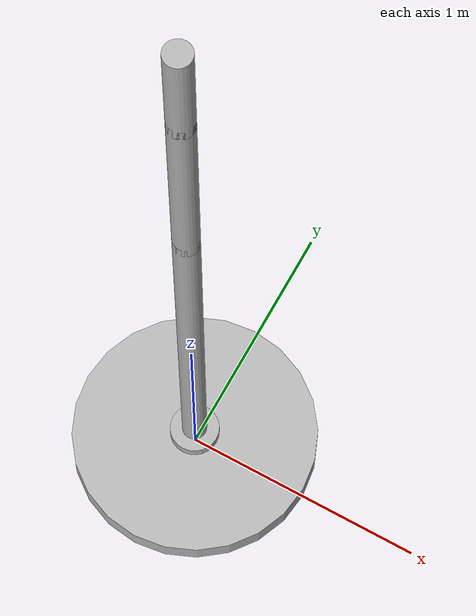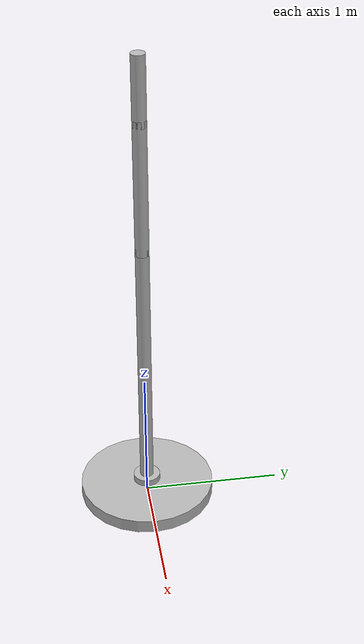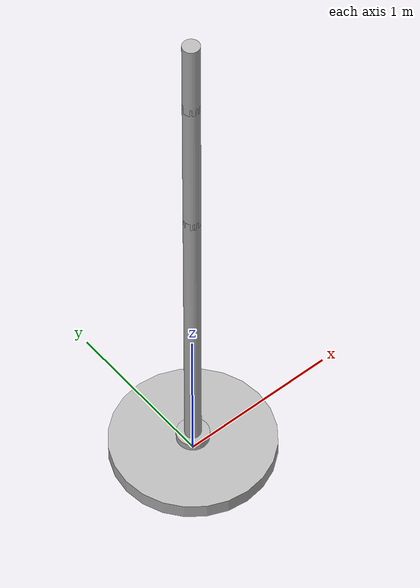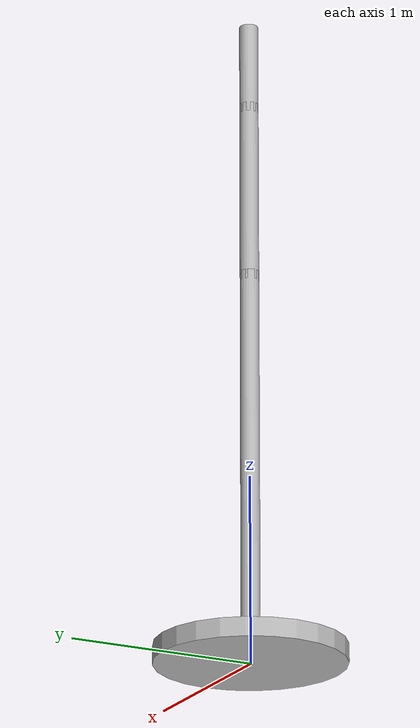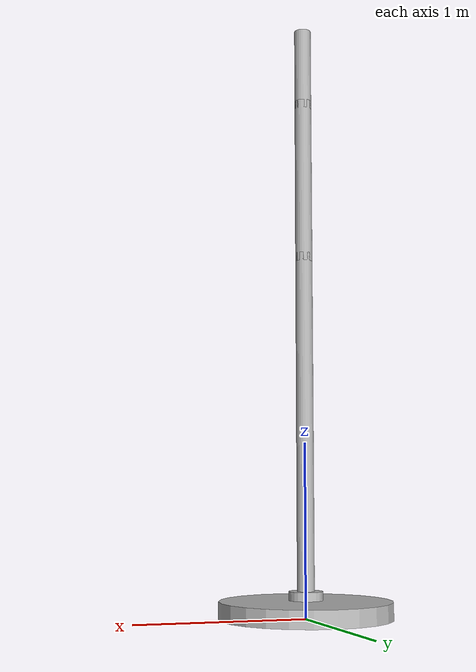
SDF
<?xml version='1.0'?>
<sdf version='1.4'>
  <model name="arm_model">
    <static>false</static>
    <link name="arm_base">

      <pose>0 0 0.05 0 0 0</pose>
      <inertial>
        <mass>50</mass>
      </inertial>
      <collision name="base_collision">
        <geometry>
          <cylinder>
            <radius>.5</radius>
            <length>.1</length>
          </cylinder>
        </geometry>
      </collision>

      <visual name="base_visual">
        <geometry>
          <cylinder>
            <radius>.5</radius>
            <length>.1</length>
          </cylinder>
        </geometry>
      </visual>

    </link>

    <link name="arm_one">
      <pose relative_to="arm_base">0 0 0.08 0 0 0</pose>
      <collision name="arm_one_collision">
        <geometry>
          <cylinder>
            <radius>.1</radius>
            <length>.05</length>
          </cylinder>
        </geometry>
      </collision>

      <visual name="arm_one_visual">

        <geometry>
          <cylinder>
            <radius>.1</radius>
            <length>.05</length>
          </cylinder>
        </geometry>
      </visual>

    </link>

    <link name="arm_two">
      <pose relative_to="arm_one"> 0 0 1 0 0 0</pose>
      <collision name="arm_two_collision">
        <geometry>
          <cylinder>
            <radius>.05</radius>
            <length>2</length>
          </cylinder>
        </geometry>
      </collision>

      <visual name="arm_two_visual">

        <geometry>
          <cylinder>
            <radius>.05</radius>
            <length>2</length>
          </cylinder>
        </geometry>
      </visual>

    </link>

   <link name="arm_three">
    <pose relative_to="arm_two"> 0 0 1.45 0 0 0</pose>
      <collision name="arm_three_collision">
        <geometry>
          <cylinder>
            <radius>.05</radius>
            <length>1</length>
          </cylinder>
        </geometry>
      </collision>

      <visual name="arm_three_visual">
        <geometry>
          <cylinder>
            <radius>.05</radius>
            <length>1</length>
          </cylinder>
        </geometry>
      </visual>

    </link>

    <link name="arm_four">
      <pose relative_to="arm_three"> 0 0 .7 0 0 0</pose>
      <collision name="arm_four_collision">
        <geometry>
          <cylinder>
            <radius>.05</radius>
            <length>.5</length>
          </cylinder>
        </geometry>
      </collision>

      <visual name="arm_four_visual">
        <geometry>
          <cylinder>
            <radius>.05</radius>
            <length>.5</length>
          </cylinder>
        </geometry>
      </visual>

    </link>

    <joint name="joint_base_one" type="fixed">

      <parent>arm_base</parent>
      <child>arm_one</child>

    </joint>

      <joint name="joint_one_two" type="fixed">
        <pose>0 0 -1 0 0 0</pose>
        <parent>arm_one</parent>
        <child>arm_two</child>

      </joint>
    <joint name="joint_two_three" type="revolute">
      <pose>0 0 -0.5 0 0 0</pose>
      <parent>arm_two</parent>
      <child>arm_three</child>

    </joint>

    <joint name="joint_three_four" type="revolute">
      <pose>0 0 -.25 0 0 0</pose>
      <parent>arm_three</parent>
      <child>arm_four</child>

    </joint>

    <plugin name="arm_control" filename="libthree_arm_gazebo.so"/>
    <plugin name="joint_controller" filename="libjoint_controller_server.so"/>
  </model>
</sdf>
